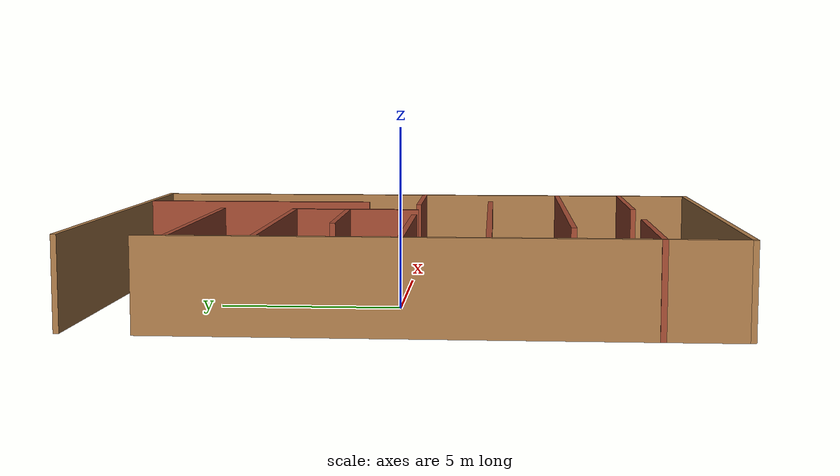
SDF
<?xml version='1.0'?>
<sdf version='1.6'>
  <model name='assignment_complete-ROOM'>
    <pose frame=''>1.67664 -0.230448 0 0 -0 0</pose>
    <link name='Wall_10'>
      <collision name='Wall_10_Collision'>
        <geometry>
          <box>
            <size>15.25 0.15 2.5</size>
          </box>
        </geometry>
        <pose frame=''>0 0 1.25 0 -0 0</pose>
      </collision>
      <visual name='Wall_10_Visual'>
        <pose frame=''>0 0 1.25 0 -0 0</pose>
        <geometry>
          <box>
            <size>15.25 0.15 2.5</size>
          </box>
        </geometry>
        <material>
          <script>
            <uri>file://media/materials/scripts/gazebo.material</uri>
            <name>Gazebo/Wood</name>
          </script>
          <ambient>1 0.764706 0.305882 1</ambient>
        </material>
        <meta>
          <layer>0</layer>
        </meta>
      </visual>
      <pose frame=''>-5.75606 -1 0 0 -0 1.5708</pose>
    </link>
    <link name='Wall_12'>
      <collision name='Wall_12_Collision'>
        <geometry>
          <box>
            <size>11.5001 0.15 2.5</size>
          </box>
        </geometry>
        <pose frame=''>0 0 1.25 0 -0 0</pose>
      </collision>
      <visual name='Wall_12_Visual'>
        <pose frame=''>0 0 1.25 0 -0 0</pose>
        <geometry>
          <box>
            <size>11.5001 0.15 2.5</size>
          </box>
        </geometry>
        <material>
          <script>
            <uri>file://media/materials/scripts/gazebo.material</uri>
            <name>Gazebo/Wood</name>
          </script>
          <ambient>1 0.764706 0.305882 1</ambient>
        </material>
        <meta>
          <layer>0</layer>
        </meta>
      </visual>
      <pose frame=''>0.014051 8.55 0 0 -0 3.14159</pose>
    </link>
    <link name='Wall_14'>
      <collision name='Wall_14_Collision'>
        <geometry>
          <box>
            <size>4.5 0.15 2.5</size>
          </box>
        </geometry>
        <pose frame=''>0 0 1.25 0 -0 0</pose>
      </collision>
      <visual name='Wall_14_Visual'>
        <pose frame=''>0 0 1.25 0 -0 0</pose>
        <geometry>
          <box>
            <size>4.5 0.15 2.5</size>
          </box>
        </geometry>
        <material>
          <script>
            <uri>file://media/materials/scripts/gazebo.material</uri>
            <name>Gazebo/Bricks</name>
          </script>
          <ambient>0.760784 0.662745 0.627451 1</ambient>
        </material>
        <meta>
          <layer>0</layer>
        </meta>
      </visual>
      <pose frame=''>-3.60669 -6.40933 0 0 -0 0</pose>
    </link>
    <link name='Wall_16'>
      <collision name='Wall_16_Collision'>
        <geometry>
          <box>
            <size>4.5 0.15 2.5</size>
          </box>
        </geometry>
        <pose frame=''>0 0 1.25 0 -0 0</pose>
      </collision>
      <visual name='Wall_16_Visual'>
        <pose frame=''>0 0 1.25 0 -0 0</pose>
        <geometry>
          <box>
            <size>4.5 0.15 2.5</size>
          </box>
        </geometry>
        <material>
          <script>
            <uri>file://media/materials/scripts/gazebo.material</uri>
            <name>Gazebo/Bricks</name>
          </script>
          <ambient>1 1 1 1</ambient>
        </material>
        <meta>
          <layer>0</layer>
        </meta>
      </visual>
      <pose frame=''>3.49224 -6.40933 0 0 -0 3.14159</pose>
    </link>
    <link name='Wall_18'>
      <collision name='Wall_18_Collision'>
        <geometry>
          <box>
            <size>9.25 0.15 2.5</size>
          </box>
        </geometry>
        <pose frame=''>0 0 1.25 0 -0 0</pose>
      </collision>
      <visual name='Wall_18_Visual'>
        <pose frame=''>0 0 1.25 0 -0 0</pose>
        <geometry>
          <box>
            <size>9.25 0.15 2.5</size>
          </box>
        </geometry>
        <material>
          <script>
            <uri>file://media/materials/scripts/gazebo.material</uri>
            <name>Gazebo/Bricks</name>
          </script>
          <ambient>1 1 1 1</ambient>
        </material>
        <meta>
          <layer>0</layer>
        </meta>
      </visual>
      <pose frame=''>1.11724 -4.38655 0 0 -0 3.14159</pose>
    </link>
    <link name='Wall_20'>
      <collision name='Wall_20_Collision'>
        <geometry>
          <box>
            <size>9.25 0.15 2.5</size>
          </box>
        </geometry>
        <pose frame=''>0 0 1.25 0 -0 0</pose>
      </collision>
      <visual name='Wall_20_Visual'>
        <pose frame=''>0 0 1.25 0 -0 0</pose>
        <geometry>
          <box>
            <size>9.25 0.15 2.5</size>
          </box>
        </geometry>
        <material>
          <script>
            <uri>file://media/materials/scripts/gazebo.material</uri>
            <name>Gazebo/Bricks</name>
          </script>
          <ambient>1 1 1 1</ambient>
        </material>
        <meta>
          <layer>0</layer>
        </meta>
      </visual>
      <pose frame=''>-1.11032 -2.20195 0 0 -0 0</pose>
    </link>
    <link name='Wall_22'>
      <collision name='Wall_22_Collision'>
        <geometry>
          <box>
            <size>3.5 0.15 2.5</size>
          </box>
        </geometry>
        <pose frame=''>0 0 1.25 0 -0 0</pose>
      </collision>
      <visual name='Wall_22_Visual'>
        <pose frame=''>0 0 1.25 0 -0 0</pose>
        <geometry>
          <box>
            <size>3.5 0.15 2.5</size>
          </box>
        </geometry>
        <material>
          <script>
            <uri>file://media/materials/scripts/gazebo.material</uri>
            <name>Gazebo/Bricks</name>
          </script>
          <ambient>1 1 1 1</ambient>
        </material>
        <meta>
          <layer>0</layer>
        </meta>
      </visual>
      <pose frame=''>4.0327 -0.017352 0 0 -0 3.14159</pose>
    </link>
    <link name='Wall_24'>
      <collision name='Wall_24_Collision'>
        <geometry>
          <box>
            <size>5.25 0.15 2.5</size>
          </box>
        </geometry>
        <pose frame=''>0 0 1.25 0 -0 0</pose>
      </collision>
      <visual name='Wall_24_Visual'>
        <pose frame=''>0 0 1.25 0 -0 0</pose>
        <geometry>
          <box>
            <size>5.25 0.15 2.5</size>
          </box>
        </geometry>
        <material>
          <script>
            <uri>file://media/materials/scripts/gazebo.material</uri>
            <name>Gazebo/Bricks</name>
          </script>
          <ambient>1 1 1 1</ambient>
        </material>
        <meta>
          <layer>0</layer>
        </meta>
      </visual>
      <pose frame=''>-3.19123 -0.059567 0 0 -0 0</pose>
    </link>
    <link name='Wall_26'>
      <collision name='Wall_26_Collision'>
        <geometry>
          <box>
            <size>3.75 0.15 2.5</size>
          </box>
        </geometry>
        <pose frame=''>0 0 1.25 0 -0 0</pose>
      </collision>
      <visual name='Wall_26_Visual'>
        <pose frame=''>0 0 1.25 0 -0 0</pose>
        <geometry>
          <box>
            <size>3.75 0.15 2.5</size>
          </box>
        </geometry>
        <material>
          <script>
            <uri>file://media/materials/scripts/gazebo.material</uri>
            <name>Gazebo/Bricks</name>
          </script>
          <ambient>1 1 1 1</ambient>
        </material>
        <meta>
          <layer>0</layer>
        </meta>
      </visual>
      <pose frame=''>0.850614 1.77879 0 0 -0 1.5708</pose>
    </link>
    <link name='Wall_27'>
      <collision name='Wall_27_Collision'>
        <geometry>
          <box>
            <size>6.75 0.15 2.5</size>
          </box>
        </geometry>
        <pose frame=''>0 0 1.25 0 -0 0</pose>
      </collision>
      <visual name='Wall_27_Visual'>
        <pose frame=''>0 0 1.25 0 -0 0</pose>
        <geometry>
          <box>
            <size>6.75 0.15 2.5</size>
          </box>
        </geometry>
        <material>
          <script>
            <uri>file://media/materials/scripts/gazebo.material</uri>
            <name>Gazebo/Bricks</name>
          </script>
          <ambient>1 1 1 1</ambient>
        </material>
        <meta>
          <layer>0</layer>
        </meta>
      </visual>
      <pose frame=''>-2.44939 3.57879 0 0 -0 3.14159</pose>
    </link>
    <link name='Wall_29'>
      <collision name='Wall_29_Collision'>
        <geometry>
          <box>
            <size>3.75 0.15 2.5</size>
          </box>
        </geometry>
        <pose frame=''>0 0 1.25 0 -0 0</pose>
      </collision>
      <visual name='Wall_29_Visual'>
        <pose frame=''>0 0 1.25 0 -0 0</pose>
        <geometry>
          <box>
            <size>3.75 0.15 2.5</size>
          </box>
        </geometry>
        <material>
          <script>
            <uri>file://media/materials/scripts/gazebo.material</uri>
            <name>Gazebo/Bricks</name>
          </script>
          <ambient>1 1 1 1</ambient>
        </material>
        <meta>
          <layer>0</layer>
        </meta>
      </visual>
      <pose frame=''>-0.949386 1.98398 0 0 -0 3.14159</pose>
    </link>
    <link name='Wall_31'>
      <collision name='Wall_31_Collision'>
        <geometry>
          <box>
            <size>7 0.15 2.5</size>
          </box>
        </geometry>
        <pose frame=''>0 0 1.25 0 -0 0</pose>
      </collision>
      <visual name='Wall_31_Visual'>
        <pose frame=''>0 0 1.25 0 -0 0</pose>
        <geometry>
          <box>
            <size>7 0.15 2.5</size>
          </box>
        </geometry>
        <material>
          <script>
            <uri>file://media/materials/scripts/gazebo.material</uri>
            <name>Gazebo/Bricks</name>
          </script>
          <ambient>1 1 1 1</ambient>
        </material>
        <meta>
          <layer>0</layer>
        </meta>
      </visual>
      <pose frame=''>3.08521 5.07578 0 0 -0 -1.5708</pose>
    </link>
    <link name='Wall_33'>
      <collision name='Wall_33_Collision'>
        <geometry>
          <box>
            <size>6.75 0.15 2.5</size>
          </box>
        </geometry>
        <pose frame=''>0 0 1.25 0 -0 0</pose>
      </collision>
      <visual name='Wall_33_Visual'>
        <pose frame=''>0 0 1.25 0 -0 0</pose>
        <geometry>
          <box>
            <size>6.75 0.15 2.5</size>
          </box>
        </geometry>
        <material>
          <script>
            <uri>file://media/materials/scripts/gazebo.material</uri>
            <name>Gazebo/Bricks</name>
          </script>
          <ambient>1 1 1 1</ambient>
        </material>
        <meta>
          <layer>0</layer>
        </meta>
      </visual>
      <pose frame=''>-2.4341 5.75625 0 0 -0 0</pose>
    </link>
    <link name='Wall_7'>
      <collision name='Wall_7_Collision'>
        <geometry>
          <box>
            <size>17.25 0.15 2.5</size>
          </box>
        </geometry>
        <pose frame=''>0 0 1.25 0 -0 0</pose>
      </collision>
      <visual name='Wall_7_Visual'>
        <pose frame=''>0 0 1.25 0 -0 0</pose>
        <geometry>
          <box>
            <size>17.25 0.15 2.5</size>
          </box>
        </geometry>
        <material>
          <script>
            <uri>file://media/materials/scripts/gazebo.material</uri>
            <name>Gazebo/Wood</name>
          </script>
          <ambient>1 0.764706 0.305882 1</ambient>
        </material>
        <meta>
          <layer>0</layer>
        </meta>
      </visual>
      <pose frame=''>5.68905 -0 0 0 -0 1.57217</pose>
    </link>
    <link name='Wall_9'>
      <collision name='Wall_9_Collision'>
        <geometry>
          <box>
            <size>11.6877 0.15 2.5</size>
          </box>
        </geometry>
        <pose frame=''>0 0 1.25 0 -0 0</pose>
      </collision>
      <visual name='Wall_9_Visual'>
        <pose frame=''>0 0 1.25 0 -0 0</pose>
        <geometry>
          <box>
            <size>11.6877 0.15 2.5</size>
          </box>
        </geometry>
        <material>
          <script>
            <uri>file://media/materials/scripts/gazebo.material</uri>
            <name>Gazebo/Wood</name>
          </script>
          <ambient>1 0.764706 0.305882 1</ambient>
        </material>
        <meta>
          <layer>0</layer>
        </meta>
      </visual>
      <pose frame=''>0.012816 -8.55 0 0 -0 3.14159</pose>
    </link>
    <static>1</static>
  </model>
</sdf>
